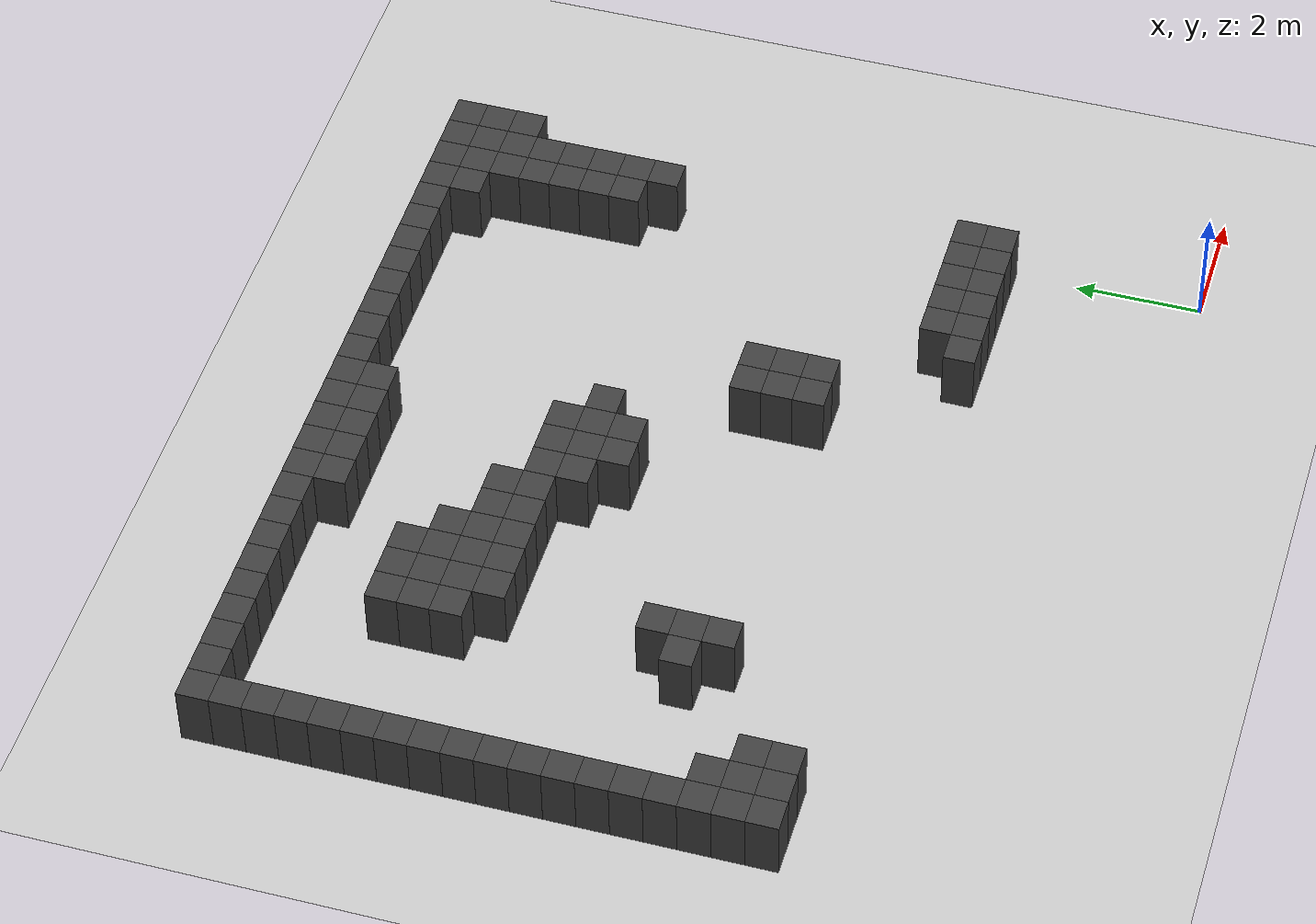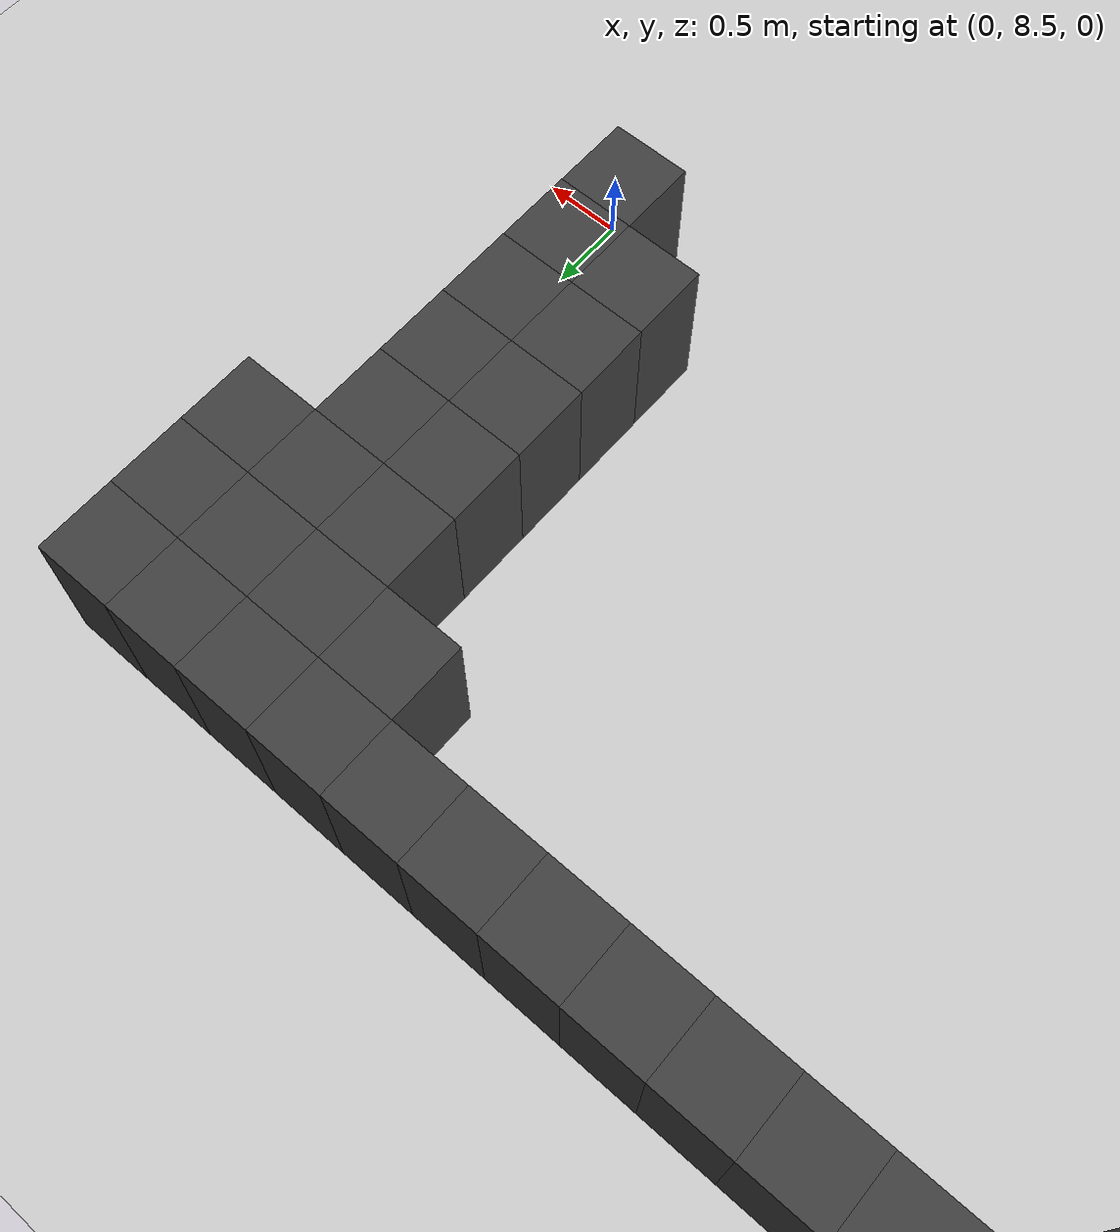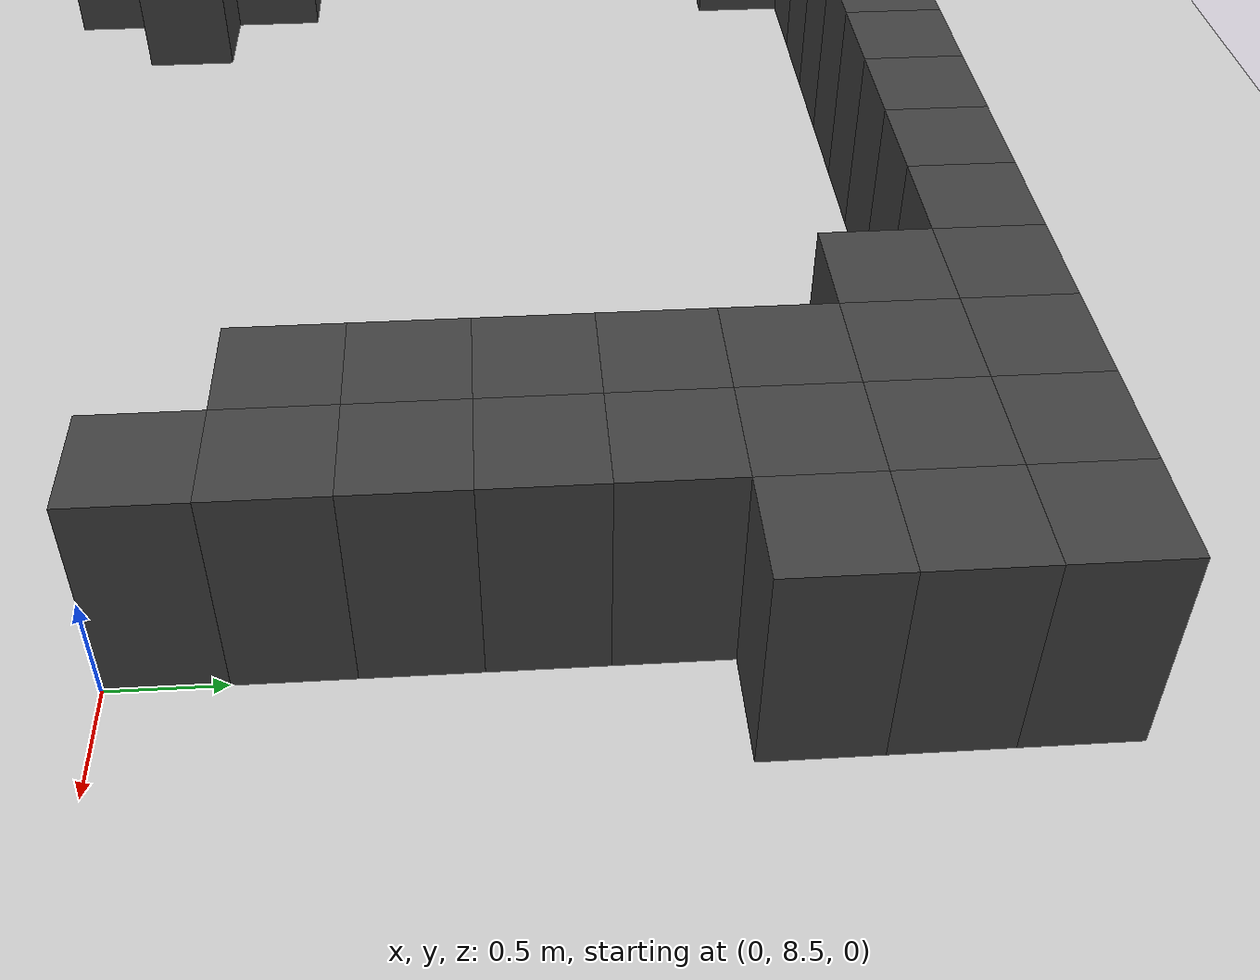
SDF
<sdf version="1.7">
 <world name="map_9061">
  <model name="ground_plane">
   <static>true</static>
   <link name="link">
    <collision name="collision">
     <geometry><plane><normal>0 0 1</normal><size>200 200</size></plane></geometry>
    </collision>
    <visual name="visual">
     <geometry><plane><normal>0 0 1</normal><size>200 200</size></plane></geometry>
     <material><ambient>0.8 0.8 0.8 1</ambient><diffuse>0.8 0.8 0.8 1</diffuse></material>
    </visual>
   </link>
  </model>
  <model name="maze_environment">
   <static>true</static>
   <link name="wall_0">
    <pose>-12.250 12.250 0.500 0 0 0</pose>
    <collision name="col"><geometry><box><size>0.5 0.5 1.0</size></box></geometry></collision>
    <visual name="vis">
     <geometry><box><size>0.5 0.5 1.0</size></box></geometry>
     <material><ambient>0.15 0.15 0.15 1</ambient><diffuse>0.25 0.25 0.25 1</diffuse></material>
    </visual>
   </link>
   <link name="wall_1">
    <pose>-11.750 12.250 0.500 0 0 0</pose>
    <collision name="col"><geometry><box><size>0.5 0.5 1.0</size></box></geometry></collision>
    <visual name="vis">
     <geometry><box><size>0.5 0.5 1.0</size></box></geometry>
     <material><ambient>0.15 0.15 0.15 1</ambient><diffuse>0.25 0.25 0.25 1</diffuse></material>
    </visual>
   </link>
   <link name="wall_2">
    <pose>-11.250 12.250 0.500 0 0 0</pose>
    <collision name="col"><geometry><box><size>0.5 0.5 1.0</size></box></geometry></collision>
    <visual name="vis">
     <geometry><box><size>0.5 0.5 1.0</size></box></geometry>
     <material><ambient>0.15 0.15 0.15 1</ambient><diffuse>0.25 0.25 0.25 1</diffuse></material>
    </visual>
   </link>
   <link name="wall_3">
    <pose>-10.750 12.250 0.500 0 0 0</pose>
    <collision name="col"><geometry><box><size>0.5 0.5 1.0</size></box></geometry></collision>
    <visual name="vis">
     <geometry><box><size>0.5 0.5 1.0</size></box></geometry>
     <material><ambient>0.15 0.15 0.15 1</ambient><diffuse>0.25 0.25 0.25 1</diffuse></material>
    </visual>
   </link>
   <link name="wall_4">
    <pose>-10.250 12.250 0.500 0 0 0</pose>
    <collision name="col"><geometry><box><size>0.5 0.5 1.0</size></box></geometry></collision>
    <visual name="vis">
     <geometry><box><size>0.5 0.5 1.0</size></box></geometry>
     <material><ambient>0.15 0.15 0.15 1</ambient><diffuse>0.25 0.25 0.25 1</diffuse></material>
    </visual>
   </link>
   <link name="wall_5">
    <pose>-9.750 12.250 0.500 0 0 0</pose>
    <collision name="col"><geometry><box><size>0.5 0.5 1.0</size></box></geometry></collision>
    <visual name="vis">
     <geometry><box><size>0.5 0.5 1.0</size></box></geometry>
     <material><ambient>0.15 0.15 0.15 1</ambient><diffuse>0.25 0.25 0.25 1</diffuse></material>
    </visual>
   </link>
   <link name="wall_6">
    <pose>-9.250 12.250 0.500 0 0 0</pose>
    <collision name="col"><geometry><box><size>0.5 0.5 1.0</size></box></geometry></collision>
    <visual name="vis">
     <geometry><box><size>0.5 0.5 1.0</size></box></geometry>
     <material><ambient>0.15 0.15 0.15 1</ambient><diffuse>0.25 0.25 0.25 1</diffuse></material>
    </visual>
   </link>
   <link name="wall_7">
    <pose>-8.750 12.250 0.500 0 0 0</pose>
    <collision name="col"><geometry><box><size>0.5 0.5 1.0</size></box></geometry></collision>
    <visual name="vis">
     <geometry><box><size>0.5 0.5 1.0</size></box></geometry>
     <material><ambient>0.15 0.15 0.15 1</ambient><diffuse>0.25 0.25 0.25 1</diffuse></material>
    </visual>
   </link>
   <link name="wall_8">
    <pose>-8.250 12.250 0.500 0 0 0</pose>
    <collision name="col"><geometry><box><size>0.5 0.5 1.0</size></box></geometry></collision>
    <visual name="vis">
     <geometry><box><size>0.5 0.5 1.0</size></box></geometry>
     <material><ambient>0.15 0.15 0.15 1</ambient><diffuse>0.25 0.25 0.25 1</diffuse></material>
    </visual>
   </link>
   <link name="wall_9">
    <pose>-7.750 12.250 0.500 0 0 0</pose>
    <collision name="col"><geometry><box><size>0.5 0.5 1.0</size></box></geometry></collision>
    <visual name="vis">
     <geometry><box><size>0.5 0.5 1.0</size></box></geometry>
     <material><ambient>0.15 0.15 0.15 1</ambient><diffuse>0.25 0.25 0.25 1</diffuse></material>
    </visual>
   </link>
   <link name="wall_10">
    <pose>-7.250 12.250 0.500 0 0 0</pose>
    <collision name="col"><geometry><box><size>0.5 0.5 1.0</size></box></geometry></collision>
    <visual name="vis">
     <geometry><box><size>0.5 0.5 1.0</size></box></geometry>
     <material><ambient>0.15 0.15 0.15 1</ambient><diffuse>0.25 0.25 0.25 1</diffuse></material>
    </visual>
   </link>
   <link name="wall_11">
    <pose>-6.750 12.250 0.500 0 0 0</pose>
    <collision name="col"><geometry><box><size>0.5 0.5 1.0</size></box></geometry></collision>
    <visual name="vis">
     <geometry><box><size>0.5 0.5 1.0</size></box></geometry>
     <material><ambient>0.15 0.15 0.15 1</ambient><diffuse>0.25 0.25 0.25 1</diffuse></material>
    </visual>
   </link>
   <link name="wall_12">
    <pose>-6.250 12.250 0.500 0 0 0</pose>
    <collision name="col"><geometry><box><size>0.5 0.5 1.0</size></box></geometry></collision>
    <visual name="vis">
     <geometry><box><size>0.5 0.5 1.0</size></box></geometry>
     <material><ambient>0.15 0.15 0.15 1</ambient><diffuse>0.25 0.25 0.25 1</diffuse></material>
    </visual>
   </link>
   <link name="wall_13">
    <pose>-5.750 12.250 0.500 0 0 0</pose>
    <collision name="col"><geometry><box><size>0.5 0.5 1.0</size></box></geometry></collision>
    <visual name="vis">
     <geometry><box><size>0.5 0.5 1.0</size></box></geometry>
     <material><ambient>0.15 0.15 0.15 1</ambient><diffuse>0.25 0.25 0.25 1</diffuse></material>
    </visual>
   </link>
   <link name="wall_14">
    <pose>-5.250 12.250 0.500 0 0 0</pose>
    <collision name="col"><geometry><box><size>0.5 0.5 1.0</size></box></geometry></collision>
    <visual name="vis">
     <geometry><box><size>0.5 0.5 1.0</size></box></geometry>
     <material><ambient>0.15 0.15 0.15 1</ambient><diffuse>0.25 0.25 0.25 1</diffuse></material>
    </visual>
   </link>
   <link name="wall_15">
    <pose>-4.750 12.250 0.500 0 0 0</pose>
    <collision name="col"><geometry><box><size>0.5 0.5 1.0</size></box></geometry></collision>
    <visual name="vis">
     <geometry><box><size>0.5 0.5 1.0</size></box></geometry>
     <material><ambient>0.15 0.15 0.15 1</ambient><diffuse>0.25 0.25 0.25 1</diffuse></material>
    </visual>
   </link>
   <link name="wall_16">
    <pose>-4.250 12.250 0.500 0 0 0</pose>
    <collision name="col"><geometry><box><size>0.5 0.5 1.0</size></box></geometry></collision>
    <visual name="vis">
     <geometry><box><size>0.5 0.5 1.0</size></box></geometry>
     <material><ambient>0.15 0.15 0.15 1</ambient><diffuse>0.25 0.25 0.25 1</diffuse></material>
    </visual>
   </link>
   <link name="wall_17">
    <pose>-3.750 12.250 0.500 0 0 0</pose>
    <collision name="col"><geometry><box><size>0.5 0.5 1.0</size></box></geometry></collision>
    <visual name="vis">
     <geometry><box><size>0.5 0.5 1.0</size></box></geometry>
     <material><ambient>0.15 0.15 0.15 1</ambient><diffuse>0.25 0.25 0.25 1</diffuse></material>
    </visual>
   </link>
   <link name="wall_18">
    <pose>-3.250 12.250 0.500 0 0 0</pose>
    <collision name="col"><geometry><box><size>0.5 0.5 1.0</size></box></geometry></collision>
    <visual name="vis">
     <geometry><box><size>0.5 0.5 1.0</size></box></geometry>
     <material><ambient>0.15 0.15 0.15 1</ambient><diffuse>0.25 0.25 0.25 1</diffuse></material>
    </visual>
   </link>
   <link name="wall_19">
    <pose>-2.750 12.250 0.500 0 0 0</pose>
    <collision name="col"><geometry><box><size>0.5 0.5 1.0</size></box></geometry></collision>
    <visual name="vis">
     <geometry><box><size>0.5 0.5 1.0</size></box></geometry>
     <material><ambient>0.15 0.15 0.15 1</ambient><diffuse>0.25 0.25 0.25 1</diffuse></material>
    </visual>
   </link>
   <link name="wall_20">
    <pose>-2.250 12.250 0.500 0 0 0</pose>
    <collision name="col"><geometry><box><size>0.5 0.5 1.0</size></box></geometry></collision>
    <visual name="vis">
     <geometry><box><size>0.5 0.5 1.0</size></box></geometry>
     <material><ambient>0.15 0.15 0.15 1</ambient><diffuse>0.25 0.25 0.25 1</diffuse></material>
    </visual>
   </link>
   <link name="wall_21">
    <pose>-1.750 12.250 0.500 0 0 0</pose>
    <collision name="col"><geometry><box><size>0.5 0.5 1.0</size></box></geometry></collision>
    <visual name="vis">
     <geometry><box><size>0.5 0.5 1.0</size></box></geometry>
     <material><ambient>0.15 0.15 0.15 1</ambient><diffuse>0.25 0.25 0.25 1</diffuse></material>
    </visual>
   </link>
   <link name="wall_22">
    <pose>-1.250 12.250 0.500 0 0 0</pose>
    <collision name="col"><geometry><box><size>0.5 0.5 1.0</size></box></geometry></collision>
    <visual name="vis">
     <geometry><box><size>0.5 0.5 1.0</size></box></geometry>
     <material><ambient>0.15 0.15 0.15 1</ambient><diffuse>0.25 0.25 0.25 1</diffuse></material>
    </visual>
   </link>
   <link name="wall_23">
    <pose>-0.750 12.250 0.500 0 0 0</pose>
    <collision name="col"><geometry><box><size>0.5 0.5 1.0</size></box></geometry></collision>
    <visual name="vis">
     <geometry><box><size>0.5 0.5 1.0</size></box></geometry>
     <material><ambient>0.15 0.15 0.15 1</ambient><diffuse>0.25 0.25 0.25 1</diffuse></material>
    </visual>
   </link>
   <link name="wall_24">
    <pose>-0.250 12.250 0.500 0 0 0</pose>
    <collision name="col"><geometry><box><size>0.5 0.5 1.0</size></box></geometry></collision>
    <visual name="vis">
     <geometry><box><size>0.5 0.5 1.0</size></box></geometry>
     <material><ambient>0.15 0.15 0.15 1</ambient><diffuse>0.25 0.25 0.25 1</diffuse></material>
    </visual>
   </link>
   <link name="wall_25">
    <pose>0.250 12.250 0.500 0 0 0</pose>
    <collision name="col"><geometry><box><size>0.5 0.5 1.0</size></box></geometry></collision>
    <visual name="vis">
     <geometry><box><size>0.5 0.5 1.0</size></box></geometry>
     <material><ambient>0.15 0.15 0.15 1</ambient><diffuse>0.25 0.25 0.25 1</diffuse></material>
    </visual>
   </link>
   <link name="wall_50">
    <pose>-12.250 11.750 0.500 0 0 0</pose>
    <collision name="col"><geometry><box><size>0.5 0.5 1.0</size></box></geometry></collision>
    <visual name="vis">
     <geometry><box><size>0.5 0.5 1.0</size></box></geometry>
     <material><ambient>0.15 0.15 0.15 1</ambient><diffuse>0.25 0.25 0.25 1</diffuse></material>
    </visual>
   </link>
   <link name="wall_51">
    <pose>-7.750 11.750 0.500 0 0 0</pose>
    <collision name="col"><geometry><box><size>0.5 0.5 1.0</size></box></geometry></collision>
    <visual name="vis">
     <geometry><box><size>0.5 0.5 1.0</size></box></geometry>
     <material><ambient>0.15 0.15 0.15 1</ambient><diffuse>0.25 0.25 0.25 1</diffuse></material>
    </visual>
   </link>
   <link name="wall_52">
    <pose>-7.250 11.750 0.500 0 0 0</pose>
    <collision name="col"><geometry><box><size>0.5 0.5 1.0</size></box></geometry></collision>
    <visual name="vis">
     <geometry><box><size>0.5 0.5 1.0</size></box></geometry>
     <material><ambient>0.15 0.15 0.15 1</ambient><diffuse>0.25 0.25 0.25 1</diffuse></material>
    </visual>
   </link>
   <link name="wall_53">
    <pose>-6.750 11.750 0.500 0 0 0</pose>
    <collision name="col"><geometry><box><size>0.5 0.5 1.0</size></box></geometry></collision>
    <visual name="vis">
     <geometry><box><size>0.5 0.5 1.0</size></box></geometry>
     <material><ambient>0.15 0.15 0.15 1</ambient><diffuse>0.25 0.25 0.25 1</diffuse></material>
    </visual>
   </link>
   <link name="wall_54">
    <pose>-6.250 11.750 0.500 0 0 0</pose>
    <collision name="col"><geometry><box><size>0.5 0.5 1.0</size></box></geometry></collision>
    <visual name="vis">
     <geometry><box><size>0.5 0.5 1.0</size></box></geometry>
     <material><ambient>0.15 0.15 0.15 1</ambient><diffuse>0.25 0.25 0.25 1</diffuse></material>
    </visual>
   </link>
   <link name="wall_55">
    <pose>-5.750 11.750 0.500 0 0 0</pose>
    <collision name="col"><geometry><box><size>0.5 0.5 1.0</size></box></geometry></collision>
    <visual name="vis">
     <geometry><box><size>0.5 0.5 1.0</size></box></geometry>
     <material><ambient>0.15 0.15 0.15 1</ambient><diffuse>0.25 0.25 0.25 1</diffuse></material>
    </visual>
   </link>
   <link name="wall_56">
    <pose>-1.250 11.750 0.500 0 0 0</pose>
    <collision name="col"><geometry><box><size>0.5 0.5 1.0</size></box></geometry></collision>
    <visual name="vis">
     <geometry><box><size>0.5 0.5 1.0</size></box></geometry>
     <material><ambient>0.15 0.15 0.15 1</ambient><diffuse>0.25 0.25 0.25 1</diffuse></material>
    </visual>
   </link>
   <link name="wall_57">
    <pose>-0.750 11.750 0.500 0 0 0</pose>
    <collision name="col"><geometry><box><size>0.5 0.5 1.0</size></box></geometry></collision>
    <visual name="vis">
     <geometry><box><size>0.5 0.5 1.0</size></box></geometry>
     <material><ambient>0.15 0.15 0.15 1</ambient><diffuse>0.25 0.25 0.25 1</diffuse></material>
    </visual>
   </link>
   <link name="wall_58">
    <pose>-0.250 11.750 0.500 0 0 0</pose>
    <collision name="col"><geometry><box><size>0.5 0.5 1.0</size></box></geometry></collision>
    <visual name="vis">
     <geometry><box><size>0.5 0.5 1.0</size></box></geometry>
     <material><ambient>0.15 0.15 0.15 1</ambient><diffuse>0.25 0.25 0.25 1</diffuse></material>
    </visual>
   </link>
   <link name="wall_59">
    <pose>0.250 11.750 0.500 0 0 0</pose>
    <collision name="col"><geometry><box><size>0.5 0.5 1.0</size></box></geometry></collision>
    <visual name="vis">
     <geometry><box><size>0.5 0.5 1.0</size></box></geometry>
     <material><ambient>0.15 0.15 0.15 1</ambient><diffuse>0.25 0.25 0.25 1</diffuse></material>
    </visual>
   </link>
   <link name="wall_77">
    <pose>-12.250 11.250 0.500 0 0 0</pose>
    <collision name="col"><geometry><box><size>0.5 0.5 1.0</size></box></geometry></collision>
    <visual name="vis">
     <geometry><box><size>0.5 0.5 1.0</size></box></geometry>
     <material><ambient>0.15 0.15 0.15 1</ambient><diffuse>0.25 0.25 0.25 1</diffuse></material>
    </visual>
   </link>
   <link name="wall_78">
    <pose>-0.750 11.250 0.500 0 0 0</pose>
    <collision name="col"><geometry><box><size>0.5 0.5 1.0</size></box></geometry></collision>
    <visual name="vis">
     <geometry><box><size>0.5 0.5 1.0</size></box></geometry>
     <material><ambient>0.15 0.15 0.15 1</ambient><diffuse>0.25 0.25 0.25 1</diffuse></material>
    </visual>
   </link>
   <link name="wall_79">
    <pose>-0.250 11.250 0.500 0 0 0</pose>
    <collision name="col"><geometry><box><size>0.5 0.5 1.0</size></box></geometry></collision>
    <visual name="vis">
     <geometry><box><size>0.5 0.5 1.0</size></box></geometry>
     <material><ambient>0.15 0.15 0.15 1</ambient><diffuse>0.25 0.25 0.25 1</diffuse></material>
    </visual>
   </link>
   <link name="wall_80">
    <pose>0.250 11.250 0.500 0 0 0</pose>
    <collision name="col"><geometry><box><size>0.5 0.5 1.0</size></box></geometry></collision>
    <visual name="vis">
     <geometry><box><size>0.5 0.5 1.0</size></box></geometry>
     <material><ambient>0.15 0.15 0.15 1</ambient><diffuse>0.25 0.25 0.25 1</diffuse></material>
    </visual>
   </link>
   <link name="wall_89">
    <pose>-12.250 10.750 0.500 0 0 0</pose>
    <collision name="col"><geometry><box><size>0.5 0.5 1.0</size></box></geometry></collision>
    <visual name="vis">
     <geometry><box><size>0.5 0.5 1.0</size></box></geometry>
     <material><ambient>0.15 0.15 0.15 1</ambient><diffuse>0.25 0.25 0.25 1</diffuse></material>
    </visual>
   </link>
   <link name="wall_90">
    <pose>-0.750 10.750 0.500 0 0 0</pose>
    <collision name="col"><geometry><box><size>0.5 0.5 1.0</size></box></geometry></collision>
    <visual name="vis">
     <geometry><box><size>0.5 0.5 1.0</size></box></geometry>
     <material><ambient>0.15 0.15 0.15 1</ambient><diffuse>0.25 0.25 0.25 1</diffuse></material>
    </visual>
   </link>
   <link name="wall_91">
    <pose>-0.250 10.750 0.500 0 0 0</pose>
    <collision name="col"><geometry><box><size>0.5 0.5 1.0</size></box></geometry></collision>
    <visual name="vis">
     <geometry><box><size>0.5 0.5 1.0</size></box></geometry>
     <material><ambient>0.15 0.15 0.15 1</ambient><diffuse>0.25 0.25 0.25 1</diffuse></material>
    </visual>
   </link>
   <link name="wall_96">
    <pose>-12.250 10.250 0.500 0 0 0</pose>
    <collision name="col"><geometry><box><size>0.5 0.5 1.0</size></box></geometry></collision>
    <visual name="vis">
     <geometry><box><size>0.5 0.5 1.0</size></box></geometry>
     <material><ambient>0.15 0.15 0.15 1</ambient><diffuse>0.25 0.25 0.25 1</diffuse></material>
    </visual>
   </link>
   <link name="wall_97">
    <pose>-9.750 10.250 0.500 0 0 0</pose>
    <collision name="col"><geometry><box><size>0.5 0.5 1.0</size></box></geometry></collision>
    <visual name="vis">
     <geometry><box><size>0.5 0.5 1.0</size></box></geometry>
     <material><ambient>0.15 0.15 0.15 1</ambient><diffuse>0.25 0.25 0.25 1</diffuse></material>
    </visual>
   </link>
   <link name="wall_98">
    <pose>-9.250 10.250 0.500 0 0 0</pose>
    <collision name="col"><geometry><box><size>0.5 0.5 1.0</size></box></geometry></collision>
    <visual name="vis">
     <geometry><box><size>0.5 0.5 1.0</size></box></geometry>
     <material><ambient>0.15 0.15 0.15 1</ambient><diffuse>0.25 0.25 0.25 1</diffuse></material>
    </visual>
   </link>
   <link name="wall_99">
    <pose>-8.750 10.250 0.500 0 0 0</pose>
    <collision name="col"><geometry><box><size>0.5 0.5 1.0</size></box></geometry></collision>
    <visual name="vis">
     <geometry><box><size>0.5 0.5 1.0</size></box></geometry>
     <material><ambient>0.15 0.15 0.15 1</ambient><diffuse>0.25 0.25 0.25 1</diffuse></material>
    </visual>
   </link>
   <link name="wall_100">
    <pose>-0.750 10.250 0.500 0 0 0</pose>
    <collision name="col"><geometry><box><size>0.5 0.5 1.0</size></box></geometry></collision>
    <visual name="vis">
     <geometry><box><size>0.5 0.5 1.0</size></box></geometry>
     <material><ambient>0.15 0.15 0.15 1</ambient><diffuse>0.25 0.25 0.25 1</diffuse></material>
    </visual>
   </link>
   <link name="wall_101">
    <pose>-0.250 10.250 0.500 0 0 0</pose>
    <collision name="col"><geometry><box><size>0.5 0.5 1.0</size></box></geometry></collision>
    <visual name="vis">
     <geometry><box><size>0.5 0.5 1.0</size></box></geometry>
     <material><ambient>0.15 0.15 0.15 1</ambient><diffuse>0.25 0.25 0.25 1</diffuse></material>
    </visual>
   </link>
   <link name="wall_106">
    <pose>-12.250 9.750 0.500 0 0 0</pose>
    <collision name="col"><geometry><box><size>0.5 0.5 1.0</size></box></geometry></collision>
    <visual name="vis">
     <geometry><box><size>0.5 0.5 1.0</size></box></geometry>
     <material><ambient>0.15 0.15 0.15 1</ambient><diffuse>0.25 0.25 0.25 1</diffuse></material>
    </visual>
   </link>
   <link name="wall_107">
    <pose>-9.750 9.750 0.500 0 0 0</pose>
    <collision name="col"><geometry><box><size>0.5 0.5 1.0</size></box></geometry></collision>
    <visual name="vis">
     <geometry><box><size>0.5 0.5 1.0</size></box></geometry>
     <material><ambient>0.15 0.15 0.15 1</ambient><diffuse>0.25 0.25 0.25 1</diffuse></material>
    </visual>
   </link>
   <link name="wall_108">
    <pose>-9.250 9.750 0.500 0 0 0</pose>
    <collision name="col"><geometry><box><size>0.5 0.5 1.0</size></box></geometry></collision>
    <visual name="vis">
     <geometry><box><size>0.5 0.5 1.0</size></box></geometry>
     <material><ambient>0.15 0.15 0.15 1</ambient><diffuse>0.25 0.25 0.25 1</diffuse></material>
    </visual>
   </link>
   <link name="wall_109">
    <pose>-8.750 9.750 0.500 0 0 0</pose>
    <collision name="col"><geometry><box><size>0.5 0.5 1.0</size></box></geometry></collision>
    <visual name="vis">
     <geometry><box><size>0.5 0.5 1.0</size></box></geometry>
     <material><ambient>0.15 0.15 0.15 1</ambient><diffuse>0.25 0.25 0.25 1</diffuse></material>
    </visual>
   </link>
   <link name="wall_110">
    <pose>-8.250 9.750 0.500 0 0 0</pose>
    <collision name="col"><geometry><box><size>0.5 0.5 1.0</size></box></geometry></collision>
    <visual name="vis">
     <geometry><box><size>0.5 0.5 1.0</size></box></geometry>
     <material><ambient>0.15 0.15 0.15 1</ambient><diffuse>0.25 0.25 0.25 1</diffuse></material>
    </visual>
   </link>
   <link name="wall_111">
    <pose>-0.750 9.750 0.500 0 0 0</pose>
    <collision name="col"><geometry><box><size>0.5 0.5 1.0</size></box></geometry></collision>
    <visual name="vis">
     <geometry><box><size>0.5 0.5 1.0</size></box></geometry>
     <material><ambient>0.15 0.15 0.15 1</ambient><diffuse>0.25 0.25 0.25 1</diffuse></material>
    </visual>
   </link>
   <link name="wall_112">
    <pose>-0.250 9.750 0.500 0 0 0</pose>
    <collision name="col"><geometry><box><size>0.5 0.5 1.0</size></box></geometry></collision>
    <visual name="vis">
     <geometry><box><size>0.5 0.5 1.0</size></box></geometry>
     <material><ambient>0.15 0.15 0.15 1</ambient><diffuse>0.25 0.25 0.25 1</diffuse></material>
    </visual>
   </link>
   <link name="wall_119">
    <pose>-12.250 9.250 0.500 0 0 0</pose>
    <collision name="col"><geometry><box><size>0.5 0.5 1.0</size></box></geometry></collision>
    <visual name="vis">
     <geometry><box><size>0.5 0.5 1.0</size></box></geometry>
     <material><ambient>0.15 0.15 0.15 1</ambient><diffuse>0.25 0.25 0.25 1</diffuse></material>
    </visual>
   </link>
   <link name="wall_120">
    <pose>-9.750 9.250 0.500 0 0 0</pose>
    <collision name="col"><geometry><box><size>0.5 0.5 1.0</size></box></geometry></collision>
    <visual name="vis">
     <geometry><box><size>0.5 0.5 1.0</size></box></geometry>
     <material><ambient>0.15 0.15 0.15 1</ambient><diffuse>0.25 0.25 0.25 1</diffuse></material>
    </visual>
   </link>
   <link name="wall_121">
    <pose>-9.250 9.250 0.500 0 0 0</pose>
    <collision name="col"><geometry><box><size>0.5 0.5 1.0</size></box></geometry></collision>
    <visual name="vis">
     <geometry><box><size>0.5 0.5 1.0</size></box></geometry>
     <material><ambient>0.15 0.15 0.15 1</ambient><diffuse>0.25 0.25 0.25 1</diffuse></material>
    </visual>
   </link>
   <link name="wall_122">
    <pose>-8.750 9.250 0.500 0 0 0</pose>
    <collision name="col"><geometry><box><size>0.5 0.5 1.0</size></box></geometry></collision>
    <visual name="vis">
     <geometry><box><size>0.5 0.5 1.0</size></box></geometry>
     <material><ambient>0.15 0.15 0.15 1</ambient><diffuse>0.25 0.25 0.25 1</diffuse></material>
    </visual>
   </link>
   <link name="wall_123">
    <pose>-8.250 9.250 0.500 0 0 0</pose>
    <collision name="col"><geometry><box><size>0.5 0.5 1.0</size></box></geometry></collision>
    <visual name="vis">
     <geometry><box><size>0.5 0.5 1.0</size></box></geometry>
     <material><ambient>0.15 0.15 0.15 1</ambient><diffuse>0.25 0.25 0.25 1</diffuse></material>
    </visual>
   </link>
   <link name="wall_124">
    <pose>-7.750 9.250 0.500 0 0 0</pose>
    <collision name="col"><geometry><box><size>0.5 0.5 1.0</size></box></geometry></collision>
    <visual name="vis">
     <geometry><box><size>0.5 0.5 1.0</size></box></geometry>
     <material><ambient>0.15 0.15 0.15 1</ambient><diffuse>0.25 0.25 0.25 1</diffuse></material>
    </visual>
   </link>
   <link name="wall_125">
    <pose>-7.250 9.250 0.500 0 0 0</pose>
    <collision name="col"><geometry><box><size>0.5 0.5 1.0</size></box></geometry></collision>
    <visual name="vis">
     <geometry><box><size>0.5 0.5 1.0</size></box></geometry>
     <material><ambient>0.15 0.15 0.15 1</ambient><diffuse>0.25 0.25 0.25 1</diffuse></material>
    </visual>
   </link>
   <link name="wall_126">
    <pose>-0.750 9.250 0.500 0 0 0</pose>
    <collision name="col"><geometry><box><size>0.5 0.5 1.0</size></box></geometry></collision>
    <visual name="vis">
     <geometry><box><size>0.5 0.5 1.0</size></box></geometry>
     <material><ambient>0.15 0.15 0.15 1</ambient><diffuse>0.25 0.25 0.25 1</diffuse></material>
    </visual>
   </link>
   <link name="wall_127">
    <pose>-0.250 9.250 0.500 0 0 0</pose>
    <collision name="col"><geometry><box><size>0.5 0.5 1.0</size></box></geometry></collision>
    <visual name="vis">
     <geometry><box><size>0.5 0.5 1.0</size></box></geometry>
     <material><ambient>0.15 0.15 0.15 1</ambient><diffuse>0.25 0.25 0.25 1</diffuse></material>
    </visual>
   </link>
   <link name="wall_137">
    <pose>-12.250 8.750 0.500 0 0 0</pose>
    <collision name="col"><geometry><box><size>0.5 0.5 1.0</size></box></geometry></collision>
    <visual name="vis">
     <geometry><box><size>0.5 0.5 1.0</size></box></geometry>
     <material><ambient>0.15 0.15 0.15 1</ambient><diffuse>0.25 0.25 0.25 1</diffuse></material>
    </visual>
   </link>
   <link name="wall_138">
    <pose>-9.250 8.750 0.500 0 0 0</pose>
    <collision name="col"><geometry><box><size>0.5 0.5 1.0</size></box></geometry></collision>
    <visual name="vis">
     <geometry><box><size>0.5 0.5 1.0</size></box></geometry>
     <material><ambient>0.15 0.15 0.15 1</ambient><diffuse>0.25 0.25 0.25 1</diffuse></material>
    </visual>
   </link>
   <link name="wall_139">
    <pose>-8.750 8.750 0.500 0 0 0</pose>
    <collision name="col"><geometry><box><size>0.5 0.5 1.0</size></box></geometry></collision>
    <visual name="vis">
     <geometry><box><size>0.5 0.5 1.0</size></box></geometry>
     <material><ambient>0.15 0.15 0.15 1</ambient><diffuse>0.25 0.25 0.25 1</diffuse></material>
    </visual>
   </link>
   <link name="wall_140">
    <pose>-8.250 8.750 0.500 0 0 0</pose>
    <collision name="col"><geometry><box><size>0.5 0.5 1.0</size></box></geometry></collision>
    <visual name="vis">
     <geometry><box><size>0.5 0.5 1.0</size></box></geometry>
     <material><ambient>0.15 0.15 0.15 1</ambient><diffuse>0.25 0.25 0.25 1</diffuse></material>
    </visual>
   </link>
   <link name="wall_141">
    <pose>-7.750 8.750 0.500 0 0 0</pose>
    <collision name="col"><geometry><box><size>0.5 0.5 1.0</size></box></geometry></collision>
    <visual name="vis">
     <geometry><box><size>0.5 0.5 1.0</size></box></geometry>
     <material><ambient>0.15 0.15 0.15 1</ambient><diffuse>0.25 0.25 0.25 1</diffuse></material>
    </visual>
   </link>
   <link name="wall_142">
    <pose>-7.250 8.750 0.500 0 0 0</pose>
    <collision name="col"><geometry><box><size>0.5 0.5 1.0</size></box></geometry></collision>
    <visual name="vis">
     <geometry><box><size>0.5 0.5 1.0</size></box></geometry>
     <material><ambient>0.15 0.15 0.15 1</ambient><diffuse>0.25 0.25 0.25 1</diffuse></material>
    </visual>
   </link>
   <link name="wall_143">
    <pose>-6.750 8.750 0.500 0 0 0</pose>
    <collision name="col"><geometry><box><size>0.5 0.5 1.0</size></box></geometry></collision>
    <visual name="vis">
     <geometry><box><size>0.5 0.5 1.0</size></box></geometry>
     <material><ambient>0.15 0.15 0.15 1</ambient><diffuse>0.25 0.25 0.25 1</diffuse></material>
    </visual>
   </link>
   <link name="wall_144">
    <pose>-6.250 8.750 0.500 0 0 0</pose>
    <collision name="col"><geometry><box><size>0.5 0.5 1.0</size></box></geometry></collision>
    <visual name="vis">
     <geometry><box><size>0.5 0.5 1.0</size></box></geometry>
     <material><ambient>0.15 0.15 0.15 1</ambient><diffuse>0.25 0.25 0.25 1</diffuse></material>
    </visual>
   </link>
   <link name="wall_145">
    <pose>-5.750 8.750 0.500 0 0 0</pose>
    <collision name="col"><geometry><box><size>0.5 0.5 1.0</size></box></geometry></collision>
    <visual name="vis">
     <geometry><box><size>0.5 0.5 1.0</size></box></geometry>
     <material><ambient>0.15 0.15 0.15 1</ambient><diffuse>0.25 0.25 0.25 1</diffuse></material>
    </visual>
   </link>
   <link name="wall_146">
    <pose>-0.250 8.750 0.500 0 0 0</pose>
    <collision name="col"><geometry><box><size>0.5 0.5 1.0</size></box></geometry></collision>
    <visual name="vis">
     <geometry><box><size>0.5 0.5 1.0</size></box></geometry>
     <material><ambient>0.15 0.15 0.15 1</ambient><diffuse>0.25 0.25 0.25 1</diffuse></material>
    </visual>
   </link>
   <link name="wall_158">
    <pose>-12.250 8.250 0.500 0 0 0</pose>
    <collision name="col"><geometry><box><size>0.5 0.5 1.0</size></box></geometry></collision>
    <visual name="vis">
     <geometry><box><size>0.5 0.5 1.0</size></box></geometry>
     <material><ambient>0.15 0.15 0.15 1</ambient><diffuse>0.25 0.25 0.25 1</diffuse></material>
    </visual>
   </link>
   <link name="wall_159">
    <pose>-6.750 8.250 0.500 0 0 0</pose>
    <collision name="col"><geometry><box><size>0.5 0.5 1.0</size></box></geometry></collision>
    <visual name="vis">
     <geometry><box><size>0.5 0.5 1.0</size></box></geometry>
     <material><ambient>0.15 0.15 0.15 1</ambient><diffuse>0.25 0.25 0.25 1</diffuse></material>
    </visual>
   </link>
   <link name="wall_160">
    <pose>-6.250 8.250 0.500 0 0 0</pose>
    <collision name="col"><geometry><box><size>0.5 0.5 1.0</size></box></geometry></collision>
    <visual name="vis">
     <geometry><box><size>0.5 0.5 1.0</size></box></geometry>
     <material><ambient>0.15 0.15 0.15 1</ambient><diffuse>0.25 0.25 0.25 1</diffuse></material>
    </visual>
   </link>
   <link name="wall_161">
    <pose>-5.750 8.250 0.500 0 0 0</pose>
    <collision name="col"><geometry><box><size>0.5 0.5 1.0</size></box></geometry></collision>
    <visual name="vis">
     <geometry><box><size>0.5 0.5 1.0</size></box></geometry>
     <material><ambient>0.15 0.15 0.15 1</ambient><diffuse>0.25 0.25 0.25 1</diffuse></material>
    </visual>
   </link>
   <link name="wall_162">
    <pose>-5.250 8.250 0.500 0 0 0</pose>
    <collision name="col"><geometry><box><size>0.5 0.5 1.0</size></box></geometry></collision>
    <visual name="vis">
     <geometry><box><size>0.5 0.5 1.0</size></box></geometry>
     <material><ambient>0.15 0.15 0.15 1</ambient><diffuse>0.25 0.25 0.25 1</diffuse></material>
    </visual>
   </link>
   <link name="wall_176">
    <pose>-12.250 7.750 0.500 0 0 0</pose>
    <collision name="col"><geometry><box><size>0.5 0.5 1.0</size></box></geometry></collision>
    <visual name="vis">
     <geometry><box><size>0.5 0.5 1.0</size></box></geometry>
     <material><ambient>0.15 0.15 0.15 1</ambient><diffuse>0.25 0.25 0.25 1</diffuse></material>
    </visual>
   </link>
   <link name="wall_177">
    <pose>-6.250 7.750 0.500 0 0 0</pose>
    <collision name="col"><geometry><box><size>0.5 0.5 1.0</size></box></geometry></collision>
    <visual name="vis">
     <geometry><box><size>0.5 0.5 1.0</size></box></geometry>
     <material><ambient>0.15 0.15 0.15 1</ambient><diffuse>0.25 0.25 0.25 1</diffuse></material>
    </visual>
   </link>
   <link name="wall_178">
    <pose>-5.750 7.750 0.500 0 0 0</pose>
    <collision name="col"><geometry><box><size>0.5 0.5 1.0</size></box></geometry></collision>
    <visual name="vis">
     <geometry><box><size>0.5 0.5 1.0</size></box></geometry>
     <material><ambient>0.15 0.15 0.15 1</ambient><diffuse>0.25 0.25 0.25 1</diffuse></material>
    </visual>
   </link>
   <link name="wall_191">
    <pose>-12.250 7.250 0.500 0 0 0</pose>
    <collision name="col"><geometry><box><size>0.5 0.5 1.0</size></box></geometry></collision>
    <visual name="vis">
     <geometry><box><size>0.5 0.5 1.0</size></box></geometry>
     <material><ambient>0.15 0.15 0.15 1</ambient><diffuse>0.25 0.25 0.25 1</diffuse></material>
    </visual>
   </link>
   <link name="wall_205">
    <pose>-12.250 6.750 0.500 0 0 0</pose>
    <collision name="col"><geometry><box><size>0.5 0.5 1.0</size></box></geometry></collision>
    <visual name="vis">
     <geometry><box><size>0.5 0.5 1.0</size></box></geometry>
     <material><ambient>0.15 0.15 0.15 1</ambient><diffuse>0.25 0.25 0.25 1</diffuse></material>
    </visual>
   </link>
   <link name="wall_219">
    <pose>-12.250 6.250 0.500 0 0 0</pose>
    <collision name="col"><geometry><box><size>0.5 0.5 1.0</size></box></geometry></collision>
    <visual name="vis">
     <geometry><box><size>0.5 0.5 1.0</size></box></geometry>
     <material><ambient>0.15 0.15 0.15 1</ambient><diffuse>0.25 0.25 0.25 1</diffuse></material>
    </visual>
   </link>
   <link name="wall_220">
    <pose>-9.250 6.250 0.500 0 0 0</pose>
    <collision name="col"><geometry><box><size>0.5 0.5 1.0</size></box></geometry></collision>
    <visual name="vis">
     <geometry><box><size>0.5 0.5 1.0</size></box></geometry>
     <material><ambient>0.15 0.15 0.15 1</ambient><diffuse>0.25 0.25 0.25 1</diffuse></material>
    </visual>
   </link>
   <link name="wall_221">
    <pose>-4.250 6.250 0.500 0 0 0</pose>
    <collision name="col"><geometry><box><size>0.5 0.5 1.0</size></box></geometry></collision>
    <visual name="vis">
     <geometry><box><size>0.5 0.5 1.0</size></box></geometry>
     <material><ambient>0.15 0.15 0.15 1</ambient><diffuse>0.25 0.25 0.25 1</diffuse></material>
    </visual>
   </link>
   <link name="wall_222">
    <pose>-3.750 6.250 0.500 0 0 0</pose>
    <collision name="col"><geometry><box><size>0.5 0.5 1.0</size></box></geometry></collision>
    <visual name="vis">
     <geometry><box><size>0.5 0.5 1.0</size></box></geometry>
     <material><ambient>0.15 0.15 0.15 1</ambient><diffuse>0.25 0.25 0.25 1</diffuse></material>
    </visual>
   </link>
   <link name="wall_233">
    <pose>-12.250 5.750 0.500 0 0 0</pose>
    <collision name="col"><geometry><box><size>0.5 0.5 1.0</size></box></geometry></collision>
    <visual name="vis">
     <geometry><box><size>0.5 0.5 1.0</size></box></geometry>
     <material><ambient>0.15 0.15 0.15 1</ambient><diffuse>0.25 0.25 0.25 1</diffuse></material>
    </visual>
   </link>
   <link name="wall_234">
    <pose>-9.750 5.750 0.500 0 0 0</pose>
    <collision name="col"><geometry><box><size>0.5 0.5 1.0</size></box></geometry></collision>
    <visual name="vis">
     <geometry><box><size>0.5 0.5 1.0</size></box></geometry>
     <material><ambient>0.15 0.15 0.15 1</ambient><diffuse>0.25 0.25 0.25 1</diffuse></material>
    </visual>
   </link>
   <link name="wall_235">
    <pose>-9.250 5.750 0.500 0 0 0</pose>
    <collision name="col"><geometry><box><size>0.5 0.5 1.0</size></box></geometry></collision>
    <visual name="vis">
     <geometry><box><size>0.5 0.5 1.0</size></box></geometry>
     <material><ambient>0.15 0.15 0.15 1</ambient><diffuse>0.25 0.25 0.25 1</diffuse></material>
    </visual>
   </link>
   <link name="wall_236">
    <pose>-4.250 5.750 0.500 0 0 0</pose>
    <collision name="col"><geometry><box><size>0.5 0.5 1.0</size></box></geometry></collision>
    <visual name="vis">
     <geometry><box><size>0.5 0.5 1.0</size></box></geometry>
     <material><ambient>0.15 0.15 0.15 1</ambient><diffuse>0.25 0.25 0.25 1</diffuse></material>
    </visual>
   </link>
   <link name="wall_237">
    <pose>-3.750 5.750 0.500 0 0 0</pose>
    <collision name="col"><geometry><box><size>0.5 0.5 1.0</size></box></geometry></collision>
    <visual name="vis">
     <geometry><box><size>0.5 0.5 1.0</size></box></geometry>
     <material><ambient>0.15 0.15 0.15 1</ambient><diffuse>0.25 0.25 0.25 1</diffuse></material>
    </visual>
   </link>
   <link name="wall_244">
    <pose>-12.250 5.250 0.500 0 0 0</pose>
    <collision name="col"><geometry><box><size>0.5 0.5 1.0</size></box></geometry></collision>
    <visual name="vis">
     <geometry><box><size>0.5 0.5 1.0</size></box></geometry>
     <material><ambient>0.15 0.15 0.15 1</ambient><diffuse>0.25 0.25 0.25 1</diffuse></material>
    </visual>
   </link>
   <link name="wall_245">
    <pose>-9.250 5.250 0.500 0 0 0</pose>
    <collision name="col"><geometry><box><size>0.5 0.5 1.0</size></box></geometry></collision>
    <visual name="vis">
     <geometry><box><size>0.5 0.5 1.0</size></box></geometry>
     <material><ambient>0.15 0.15 0.15 1</ambient><diffuse>0.25 0.25 0.25 1</diffuse></material>
    </visual>
   </link>
   <link name="wall_246">
    <pose>-4.250 5.250 0.500 0 0 0</pose>
    <collision name="col"><geometry><box><size>0.5 0.5 1.0</size></box></geometry></collision>
    <visual name="vis">
     <geometry><box><size>0.5 0.5 1.0</size></box></geometry>
     <material><ambient>0.15 0.15 0.15 1</ambient><diffuse>0.25 0.25 0.25 1</diffuse></material>
    </visual>
   </link>
   <link name="wall_247">
    <pose>-3.750 5.250 0.500 0 0 0</pose>
    <collision name="col"><geometry><box><size>0.5 0.5 1.0</size></box></geometry></collision>
    <visual name="vis">
     <geometry><box><size>0.5 0.5 1.0</size></box></geometry>
     <material><ambient>0.15 0.15 0.15 1</ambient><diffuse>0.25 0.25 0.25 1</diffuse></material>
    </visual>
   </link>
   <link name="wall_250">
    <pose>-12.250 4.750 0.500 0 0 0</pose>
    <collision name="col"><geometry><box><size>0.5 0.5 1.0</size></box></geometry></collision>
    <visual name="vis">
     <geometry><box><size>0.5 0.5 1.0</size></box></geometry>
     <material><ambient>0.15 0.15 0.15 1</ambient><diffuse>0.25 0.25 0.25 1</diffuse></material>
    </visual>
   </link>
   <link name="wall_251">
    <pose>-11.750 4.750 0.500 0 0 0</pose>
    <collision name="col"><geometry><box><size>0.5 0.5 1.0</size></box></geometry></collision>
    <visual name="vis">
     <geometry><box><size>0.5 0.5 1.0</size></box></geometry>
     <material><ambient>0.15 0.15 0.15 1</ambient><diffuse>0.25 0.25 0.25 1</diffuse></material>
    </visual>
   </link>
   <link name="wall_253">
    <pose>-12.250 4.250 0.500 0 0 0</pose>
    <collision name="col"><geometry><box><size>0.5 0.5 1.0</size></box></geometry></collision>
    <visual name="vis">
     <geometry><box><size>0.5 0.5 1.0</size></box></geometry>
     <material><ambient>0.15 0.15 0.15 1</ambient><diffuse>0.25 0.25 0.25 1</diffuse></material>
    </visual>
   </link>
   <link name="wall_254">
    <pose>-11.750 4.250 0.500 0 0 0</pose>
    <collision name="col"><geometry><box><size>0.5 0.5 1.0</size></box></geometry></collision>
    <visual name="vis">
     <geometry><box><size>0.5 0.5 1.0</size></box></geometry>
     <material><ambient>0.15 0.15 0.15 1</ambient><diffuse>0.25 0.25 0.25 1</diffuse></material>
    </visual>
   </link>
   <link name="wall_255">
    <pose>-11.250 4.250 0.500 0 0 0</pose>
    <collision name="col"><geometry><box><size>0.5 0.5 1.0</size></box></geometry></collision>
    <visual name="vis">
     <geometry><box><size>0.5 0.5 1.0</size></box></geometry>
     <material><ambient>0.15 0.15 0.15 1</ambient><diffuse>0.25 0.25 0.25 1</diffuse></material>
    </visual>
   </link>
   <link name="wall_259">
    <pose>-12.250 3.750 0.500 0 0 0</pose>
    <collision name="col"><geometry><box><size>0.5 0.5 1.0</size></box></geometry></collision>
    <visual name="vis">
     <geometry><box><size>0.5 0.5 1.0</size></box></geometry>
     <material><ambient>0.15 0.15 0.15 1</ambient><diffuse>0.25 0.25 0.25 1</diffuse></material>
    </visual>
   </link>
   <link name="wall_260">
    <pose>-11.750 3.750 0.500 0 0 0</pose>
    <collision name="col"><geometry><box><size>0.5 0.5 1.0</size></box></geometry></collision>
    <visual name="vis">
     <geometry><box><size>0.5 0.5 1.0</size></box></geometry>
     <material><ambient>0.15 0.15 0.15 1</ambient><diffuse>0.25 0.25 0.25 1</diffuse></material>
    </visual>
   </link>
   <link name="wall_261">
    <pose>-11.250 3.750 0.500 0 0 0</pose>
    <collision name="col"><geometry><box><size>0.5 0.5 1.0</size></box></geometry></collision>
    <visual name="vis">
     <geometry><box><size>0.5 0.5 1.0</size></box></geometry>
     <material><ambient>0.15 0.15 0.15 1</ambient><diffuse>0.25 0.25 0.25 1</diffuse></material>
    </visual>
   </link>
   <link name="wall_262">
    <pose>-2.250 3.750 0.500 0 0 0</pose>
    <collision name="col"><geometry><box><size>0.5 0.5 1.0</size></box></geometry></collision>
    <visual name="vis">
     <geometry><box><size>0.5 0.5 1.0</size></box></geometry>
     <material><ambient>0.15 0.15 0.15 1</ambient><diffuse>0.25 0.25 0.25 1</diffuse></material>
    </visual>
   </link>
   <link name="wall_263">
    <pose>-1.750 3.750 0.500 0 0 0</pose>
    <collision name="col"><geometry><box><size>0.5 0.5 1.0</size></box></geometry></collision>
    <visual name="vis">
     <geometry><box><size>0.5 0.5 1.0</size></box></geometry>
     <material><ambient>0.15 0.15 0.15 1</ambient><diffuse>0.25 0.25 0.25 1</diffuse></material>
    </visual>
   </link>
   <link name="wall_264">
    <pose>-1.250 3.750 0.500 0 0 0</pose>
    <collision name="col"><geometry><box><size>0.5 0.5 1.0</size></box></geometry></collision>
    <visual name="vis">
     <geometry><box><size>0.5 0.5 1.0</size></box></geometry>
     <material><ambient>0.15 0.15 0.15 1</ambient><diffuse>0.25 0.25 0.25 1</diffuse></material>
    </visual>
   </link>
   <link name="wall_265">
    <pose>-0.750 3.750 0.500 0 0 0</pose>
    <collision name="col"><geometry><box><size>0.5 0.5 1.0</size></box></geometry></collision>
    <visual name="vis">
     <geometry><box><size>0.5 0.5 1.0</size></box></geometry>
     <material><ambient>0.15 0.15 0.15 1</ambient><diffuse>0.25 0.25 0.25 1</diffuse></material>
    </visual>
   </link>
   <link name="wall_266">
    <pose>-0.250 3.750 0.500 0 0 0</pose>
    <collision name="col"><geometry><box><size>0.5 0.5 1.0</size></box></geometry></collision>
    <visual name="vis">
     <geometry><box><size>0.5 0.5 1.0</size></box></geometry>
     <material><ambient>0.15 0.15 0.15 1</ambient><diffuse>0.25 0.25 0.25 1</diffuse></material>
    </visual>
   </link>
   <link name="wall_280">
    <pose>-2.750 3.250 0.500 0 0 0</pose>
    <collision name="col"><geometry><box><size>0.5 0.5 1.0</size></box></geometry></collision>
    <visual name="vis">
     <geometry><box><size>0.5 0.5 1.0</size></box></geometry>
     <material><ambient>0.15 0.15 0.15 1</ambient><diffuse>0.25 0.25 0.25 1</diffuse></material>
    </visual>
   </link>
   <link name="wall_281">
    <pose>-2.250 3.250 0.500 0 0 0</pose>
    <collision name="col"><geometry><box><size>0.5 0.5 1.0</size></box></geometry></collision>
    <visual name="vis">
     <geometry><box><size>0.5 0.5 1.0</size></box></geometry>
     <material><ambient>0.15 0.15 0.15 1</ambient><diffuse>0.25 0.25 0.25 1</diffuse></material>
    </visual>
   </link>
   <link name="wall_282">
    <pose>-1.750 3.250 0.500 0 0 0</pose>
    <collision name="col"><geometry><box><size>0.5 0.5 1.0</size></box></geometry></collision>
    <visual name="vis">
     <geometry><box><size>0.5 0.5 1.0</size></box></geometry>
     <material><ambient>0.15 0.15 0.15 1</ambient><diffuse>0.25 0.25 0.25 1</diffuse></material>
    </visual>
   </link>
   <link name="wall_283">
    <pose>-1.250 3.250 0.500 0 0 0</pose>
    <collision name="col"><geometry><box><size>0.5 0.5 1.0</size></box></geometry></collision>
    <visual name="vis">
     <geometry><box><size>0.5 0.5 1.0</size></box></geometry>
     <material><ambient>0.15 0.15 0.15 1</ambient><diffuse>0.25 0.25 0.25 1</diffuse></material>
    </visual>
   </link>
   <link name="wall_284">
    <pose>-0.750 3.250 0.500 0 0 0</pose>
    <collision name="col"><geometry><box><size>0.5 0.5 1.0</size></box></geometry></collision>
    <visual name="vis">
     <geometry><box><size>0.5 0.5 1.0</size></box></geometry>
     <material><ambient>0.15 0.15 0.15 1</ambient><diffuse>0.25 0.25 0.25 1</diffuse></material>
    </visual>
   </link>
   <link name="wall_285">
    <pose>-0.250 3.250 0.500 0 0 0</pose>
    <collision name="col"><geometry><box><size>0.5 0.5 1.0</size></box></geometry></collision>
    <visual name="vis">
     <geometry><box><size>0.5 0.5 1.0</size></box></geometry>
     <material><ambient>0.15 0.15 0.15 1</ambient><diffuse>0.25 0.25 0.25 1</diffuse></material>
    </visual>
   </link>
   <link name="start_zone">
    <pose>-11.750 11.750 0.005 0 0 0</pose>
    <visual name="vis">
     <geometry><box><size>0.45 0.45 0.01</size></box></geometry>
     <material>
      <ambient>0.0 1.0 0.0 1</ambient>
      <diffuse>0.0 1.0 0.0 1</diffuse>
      <emissive>0.00 0.60 0.00 1</emissive>
     </material>
    </visual>
   </link>
  </model>
 </world>
</sdf>
